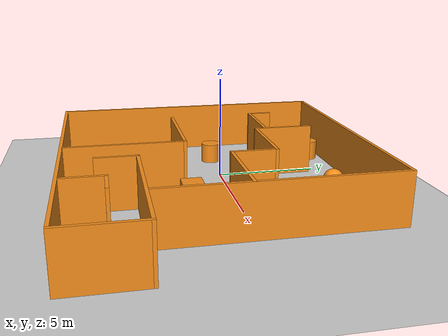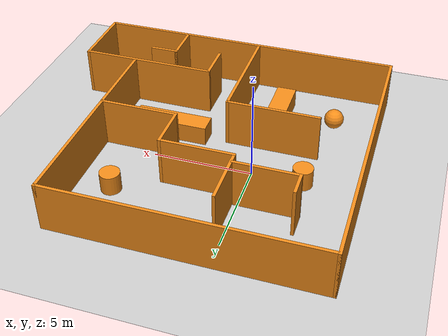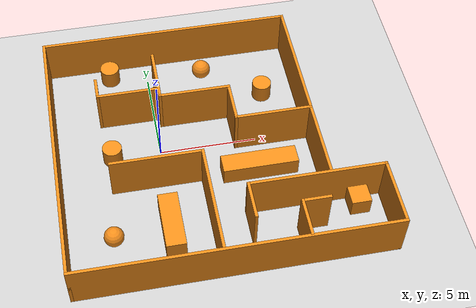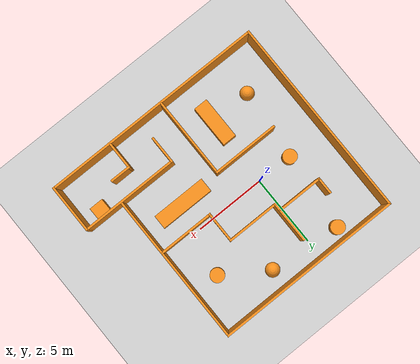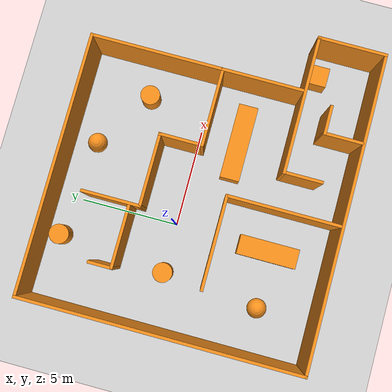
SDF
<sdf version="1.7">
 <world name="default">
  <light name="sun" type="directional">
   <pose>0 0 10 0 -0 0</pose>
   <diffuse>0.8 0.8 0.8 1</diffuse>
   <specular>0.2 0.2 0.2 1</specular>
   <attenuation>
    <range>1000</range>
    <constant>0.9</constant>
    <linear>0.01</linear>
    <quadratic>0.001</quadratic>
   </attenuation>
   <direction>-0.5 0.1 -0.9</direction>
   <spot><inner_angle>0</inner_angle><outer_angle>0</outer_angle><falloff>0</falloff></spot>
  </light>
  <model name="ground_plane">
   <static>1</static>
   <link name="link">
    <collision name="collision">
     <geometry><plane><normal>0 0 1</normal><size>100 100</size></plane></geometry>
     <surface>
      <contact><collide_bitmask>65535</collide_bitmask></contact>
      <friction><ode><mu>100</mu><mu2>50</mu2></ode></friction>
     </surface>
    </collision>
    <visual name="visual">
     <cast_shadows>0</cast_shadows>
     <geometry><plane><normal>0 0 1</normal><size>100 100</size></plane></geometry>
     <material>
      <script><uri>file://media/materials/scripts/gazebo.material</uri><name>Gazebo/Grey</name></script>
     </material>
    </visual>
   </link>
  </model>
  <gravity>0 0 -9.8</gravity>
  <magnetic_field>6e-06 2.3e-05 -4.2e-05</magnetic_field>
  <atmosphere type="adiabatic"/>
  <physics type="ode">
   <max_step_size>0.001</max_step_size>
   <real_time_factor>1</real_time_factor>
   <real_time_update_rate>1000</real_time_update_rate>
  </physics>
  <scene><ambient>0.4 0.4 0.4 1</ambient><background>0.7 0.7 0.7 1</background><shadows>1</shadows></scene>
  <spherical_coordinates>
   <surface_model>EARTH_WGS84</surface_model>
   <latitude_deg>0</latitude_deg>
   <longitude_deg>0</longitude_deg>
   <elevation>0</elevation>
   <heading_deg>0</heading_deg>
  </spherical_coordinates>
  <model name="room_test">
   <pose>2.605 -0.74 0 0 -0 0</pose>
   <link name="Wall_12">
    <collision name="Wall_12_Collision">
     <geometry><box><size>14.25 0.15 2.5</size></box></geometry>
     <pose>0 0 1.25 0 -0 0</pose>
    </collision>
    <visual name="Wall_12_Visual">
     <pose>0 0 1.25 0 -0 0</pose>
     <geometry><box><size>14.25 0.15 2.5</size></box></geometry>
     <material>
      <script><uri>file://media/materials/scripts/gazebo.material</uri><name>Gazebo/Orange</name></script>
      <ambient>1 1 1 1</ambient>
     </material>
     <meta><layer>0</layer></meta>
    </visual>
    <pose>-7.925 -0 0 0 -0 1.5708</pose>
   </link>
   <link name="Wall_14">
    <collision name="Wall_14_Collision">
     <geometry><box><size>3.5 0.15 2.5</size></box></geometry>
     <pose>0 0 1.25 0 -0 0</pose>
    </collision>
    <visual name="Wall_14_Visual">
     <pose>0 0 1.25 0 -0 0</pose>
     <geometry><box><size>3.5 0.15 2.5</size></box></geometry>
     <material>
      <script><uri>file://media/materials/scripts/gazebo.material</uri><name>Gazebo/Orange</name></script>
      <ambient>1 1 1 1</ambient>
     </material>
     <meta><layer>0</layer></meta>
    </visual>
    <pose>7.925 -5.375 0 0 -0 1.5708</pose>
   </link>
   <link name="Wall_15">
    <collision name="Wall_15_Collision">
     <geometry><box><size>7 0.15 2.5</size></box></geometry>
     <pose>0 0 1.25 0 -0 0</pose>
    </collision>
    <visual name="Wall_15_Visual">
     <pose>0 0 1.25 0 -0 0</pose>
     <geometry><box><size>7 0.15 2.5</size></box></geometry>
     <material>
      <script><uri>file://media/materials/scripts/gazebo.material</uri><name>Gazebo/Orange</name></script>
      <ambient>1 1 1 1</ambient>
     </material>
     <meta><layer>0</layer></meta>
    </visual>
    <pose>4.5 -3.7 0 0 -0 3.14159</pose>
   </link>
   <link name="Wall_18">
    <collision name="Wall_18_Collision">
     <geometry><box><size>2 0.15 2.5</size></box></geometry>
     <pose>0 0 1.25 0 -0 0</pose>
    </collision>
    <visual name="Wall_18_Visual">
     <pose>0 0 1.25 0 -0 0</pose>
     <geometry><box><size>2 0.15 2.5</size></box></geometry>
     <material>
      <script><uri>file://media/materials/scripts/gazebo.material</uri><name>Gazebo/Orange</name></script>
      <ambient>1 1 1 1</ambient>
     </material>
     <meta><layer>0</layer></meta>
    </visual>
    <pose>3.405 -6.035 0 0 -0 1.5708</pose>
   </link>
   <link name="Wall_19">
    <collision name="Wall_19_Collision">
     <geometry><box><size>1.5 0.15 2.5</size></box></geometry>
     <pose>0 0 1.25 0 -0 0</pose>
    </collision>
    <visual name="Wall_19_Visual">
     <pose>0 0 1.25 0 -0 0</pose>
     <geometry><box><size>1.5 0.15 2.5</size></box></geometry>
     <material>
      <script><uri>file://media/materials/scripts/gazebo.material</uri><name>Gazebo/Orange</name></script>
      <ambient>1 1 1 1</ambient>
     </material>
     <meta><layer>0</layer></meta>
    </visual>
    <pose>4.08 -5.11 0 0 -0 0</pose>
   </link>
   <link name="Wall_21">
    <collision name="Wall_21_Collision">
     <geometry><box><size>2 0.15 2.5</size></box></geometry>
     <pose>0 0 1.25 0 -0 0</pose>
    </collision>
    <visual name="Wall_21_Visual">
     <pose>0 0 1.25 0 -0 0</pose>
     <geometry><box><size>2 0.15 2.5</size></box></geometry>
     <material>
      <script><uri>file://media/materials/scripts/gazebo.material</uri><name>Gazebo/Orange</name></script>
      <ambient>1 1 1 1</ambient>
     </material>
     <meta><layer>0</layer></meta>
    </visual>
    <pose>1.075 -4.625 0 0 -0 -1.5708</pose>
   </link>
   <link name="Wall_23">
    <collision name="Wall_23_Collision">
     <geometry><box><size>5.75 0.15 2.5</size></box></geometry>
     <pose>0 0 1.25 0 -0 0</pose>
    </collision>
    <visual name="Wall_23_Visual">
     <pose>0 0 1.25 0 -0 0</pose>
     <geometry><box><size>5.75 0.15 2.5</size></box></geometry>
     <material>
      <script><uri>file://media/materials/scripts/gazebo.material</uri><name>Gazebo/Orange</name></script>
      <ambient>1 1 1 1</ambient>
     </material>
     <meta><layer>0</layer></meta>
    </visual>
    <pose>-0.724999 -4.15 0 0 -0 1.5708</pose>
   </link>
   <link name="Wall_25">
    <collision name="Wall_25_Collision">
     <geometry><box><size>4.75 0.15 2.5</size></box></geometry>
     <pose>0 0 1.25 0 -0 0</pose>
    </collision>
    <visual name="Wall_25_Visual">
     <pose>0 0 1.25 0 -0 0</pose>
     <geometry><box><size>4.75 0.15 2.5</size></box></geometry>
     <material>
      <script><uri>file://media/materials/scripts/gazebo.material</uri><name>Gazebo/Orange</name></script>
      <ambient>1 1 1 1</ambient>
     </material>
     <meta><layer>0</layer></meta>
    </visual>
    <pose>-3.025 -1.35 0 0 -0 3.14159</pose>
   </link>
   <link name="Wall_27">
    <collision name="Wall_27_Collision">
     <geometry><box><size>13.25 0.15 2.5</size></box></geometry>
     <pose>0 0 1.25 0 -0 0</pose>
    </collision>
    <visual name="Wall_27_Visual">
     <pose>0 0 1.25 0 -0 0</pose>
     <geometry><box><size>13.25 0.15 2.5</size></box></geometry>
     <material>
      <script><uri>file://media/materials/scripts/gazebo.material</uri><name>Gazebo/Orange</name></script>
      <ambient>1 1 1 1</ambient>
     </material>
     <meta><layer>0</layer></meta>
    </visual>
    <pose>-1.375 7.05 0 0 -0 0</pose>
   </link>
   <link name="Wall_29">
    <collision name="Wall_29_Collision">
     <geometry><box><size>10.75 0.15 2.5</size></box></geometry>
     <pose>0 0 1.25 0 -0 0</pose>
    </collision>
    <visual name="Wall_29_Visual">
     <pose>0 0 1.25 0 -0 0</pose>
     <geometry><box><size>10.75 0.15 2.5</size></box></geometry>
     <material>
      <script><uri>file://media/materials/scripts/gazebo.material</uri><name>Gazebo/Orange</name></script>
      <ambient>1 1 1 1</ambient>
     </material>
     <meta><layer>0</layer></meta>
    </visual>
    <pose>5.175 1.75 0 0 -0 -1.5708</pose>
   </link>
   <link name="Wall_32">
    <collision name="Wall_32_Collision">
     <geometry><box><size>4 0.15 2.5</size></box></geometry>
     <pose>0 0 1.25 0 -0 0</pose>
    </collision>
    <visual name="Wall_32_Visual">
     <pose>0 0 1.25 0 -0 0</pose>
     <geometry><box><size>4 0.15 2.5</size></box></geometry>
     <material>
      <script><uri>file://media/materials/scripts/gazebo.material</uri><name>Gazebo/Orange</name></script>
      <ambient>1 1 1 1</ambient>
     </material>
     <meta><layer>0</layer></meta>
    </visual>
    <pose>3.24 0.43 0 0 -0 3.14159</pose>
   </link>
   <link name="Wall_33">
    <collision name="Wall_33_Collision">
     <geometry><box><size>2.25 0.15 2.5</size></box></geometry>
     <pose>0 0 1.25 0 -0 0</pose>
    </collision>
    <visual name="Wall_33_Visual">
     <pose>0 0 1.25 0 -0 0</pose>
     <geometry><box><size>2.25 0.15 2.5</size></box></geometry>
     <material>
      <script><uri>file://media/materials/scripts/gazebo.material</uri><name>Gazebo/Orange</name></script>
      <ambient>1 1 1 1</ambient>
     </material>
     <meta><layer>0</layer></meta>
    </visual>
    <pose>1.315 1.48 0 0 -0 1.5708</pose>
   </link>
   <link name="Wall_34">
    <collision name="Wall_34_Collision">
     <geometry><box><size>3.75 0.15 2.5</size></box></geometry>
     <pose>0 0 1.25 0 -0 0</pose>
    </collision>
    <visual name="Wall_34_Visual">
     <pose>0 0 1.25 0 -0 0</pose>
     <geometry><box><size>3.75 0.15 2.5</size></box></geometry>
     <material>
      <script><uri>file://media/materials/scripts/gazebo.material</uri><name>Gazebo/Orange</name></script>
      <ambient>1 1 1 1</ambient>
     </material>
     <meta><layer>0</layer></meta>
    </visual>
    <pose>-0.484999 2.53 0 0 -0 3.14159</pose>
   </link>
   <link name="Wall_35">
    <collision name="Wall_35_Collision">
     <geometry><box><size>3 0.15 2.5</size></box></geometry>
     <pose>0 0 1.25 0 -0 0</pose>
    </collision>
    <visual name="Wall_35_Visual">
     <pose>0 0 1.25 0 -0 0</pose>
     <geometry><box><size>3 0.15 2.5</size></box></geometry>
     <material>
      <script><uri>file://media/materials/scripts/gazebo.material</uri><name>Gazebo/Orange</name></script>
      <ambient>1 1 1 1</ambient>
     </material>
     <meta><layer>0</layer></meta>
    </visual>
    <pose>-2.285 3.955 0 0 -0 1.5708</pose>
   </link>
   <link name="Wall_37">
    <collision name="Wall_37_Collision">
     <geometry><box><size>3.25 0.15 2.5</size></box></geometry>
     <pose>0 0 1.25 0 -0 0</pose>
    </collision>
    <visual name="Wall_37_Visual">
     <pose>0 0 1.25 0 -0 0</pose>
     <geometry><box><size>3.25 0.15 2.5</size></box></geometry>
     <material>
      <script><uri>file://media/materials/scripts/gazebo.material</uri><name>Gazebo/Orange</name></script>
      <ambient>1 1 1 1</ambient>
     </material>
     <meta><layer>0</layer></meta>
    </visual>
    <pose>-3.905 3.03 0 0 -0 3.14159</pose>
   </link>
   <link name="Wall_38">
    <collision name="Wall_38_Collision">
     <geometry><box><size>1.25 0.15 2.5</size></box></geometry>
     <pose>0 0 1.25 0 -0 0</pose>
    </collision>
    <visual name="Wall_38_Visual">
     <pose>0 0 1.25 0 -0 0</pose>
     <geometry><box><size>1.25 0.15 2.5</size></box></geometry>
     <material>
      <script><uri>file://media/materials/scripts/gazebo.material</uri><name>Gazebo/Orange</name></script>
      <ambient>1 1 1 1</ambient>
     </material>
     <meta><layer>0</layer></meta>
    </visual>
    <pose>-5.455 3.58 0 0 -0 1.5708</pose>
   </link>
   <link name="Wall_8">
    <collision name="Wall_8_Collision">
     <geometry><box><size>16 0.15 2.5</size></box></geometry>
     <pose>0 0 1.25 0 -0 0</pose>
    </collision>
    <visual name="Wall_8_Visual">
     <pose>0 0 1.25 0 -0 0</pose>
     <geometry><box><size>16 0.15 2.5</size></box></geometry>
     <material>
      <script><uri>file://media/materials/scripts/gazebo.material</uri><name>Gazebo/Orange</name></script>
      <ambient>1 1 1 1</ambient>
     </material>
     <meta><layer>0</layer></meta>
    </visual>
    <pose>1e-06 -7.05 0 0 -0 0</pose>
   </link>
   <static>1</static>
  </model>
  <model name="unit_sphere">
   <pose>-3 -5 0.5 0 -0 0</pose>
   <link name="link">
    <inertial>
     <mass>1</mass>
     <inertia><ixx>0.1</ixx><ixy>0</ixy><ixz>0</ixz><iyy>0.1</iyy><iyz>0</iyz><izz>0.1</izz></inertia>
    </inertial>
    <collision name="collision"><geometry><sphere><radius>0.5</radius></sphere></geometry></collision>
    <visual name="visual">
     <geometry><sphere><radius>0.5</radius></sphere></geometry>
     <material>
      <script><name>Gazebo/Orange</name><uri>file://media/materials/scripts/gazebo.material</uri></script>
     </material>
    </visual>
   </link>
  </model>
  <model name="unit_cylinder">
   <pose>-2 5.5 0.499993 -3e-06 -1e-06 -0</pose>
   <link name="link">
    <inertial>
     <mass>1</mass>
     <inertia><ixx>0.145833</ixx><ixy>0</ixy><ixz>0</ixz><iyy>0.145833</iyy><iyz>0</iyz><izz>0.125</izz></inertia>
    </inertial>
    <collision name="collision">
     <geometry><cylinder><radius>0.5</radius><length>1</length></cylinder></geometry>
    </collision>
    <visual name="visual">
     <geometry><cylinder><radius>0.5</radius><length>1</length></cylinder></geometry>
     <material>
      <script><name>Gazebo/Orange</name><uri>file://media/materials/scripts/gazebo.material</uri></script>
     </material>
    </visual>
   </link>
  </model>
  <model name="unit_cylinder_0">
   <pose>-2.5 -2e-06 0.499998 2e-06 -2e-06 -0</pose>
   <link name="link">
    <inertial>
     <mass>1</mass>
     <inertia><ixx>0.145833</ixx><ixy>0</ixy><ixz>0</ixz><iyy>0.145833</iyy><iyz>0</iyz><izz>0.125</izz></inertia>
    </inertial>
    <collision name="collision">
     <geometry><cylinder><radius>0.5</radius><length>1</length></cylinder></geometry>
    </collision>
    <visual name="visual">
     <geometry><cylinder><radius>0.5</radius><length>1</length></cylinder></geometry>
     <material>
      <script><name>Gazebo/Orange</name><uri>file://media/materials/scripts/gazebo.material</uri></script>
     </material>
    </visual>
   </link>
  </model>
  <model name="unit_box">
   <pose>4.81819 -1.99819 0.499354 -0 -0.000333 -3e-06</pose>
   <link name="link">
    <inertial>
     <mass>1</mass>
     <inertia>
      <ixx>0.166667</ixx>
      <ixy>0</ixy>
      <ixz>0</ixz>
      <iyy>0.166667</iyy>
      <iyz>0</iyz>
      <izz>0.166667</izz>
     </inertia>
    </inertial>
    <collision name="collision"><geometry><box><size>3.88199 1 1</size></box></geometry></collision>
    <visual name="visual">
     <geometry><box><size>3.88199 1 1</size></box></geometry>
     <material>
      <script><name>Gazebo/Orange</name><uri>file://media/materials/scripts/gazebo.material</uri></script>
     </material>
    </visual>
   </link>
  </model>
  <model name="unit_box_0">
   <pose>9.20867 -5.01702 0.499995 -1e-05 -0 0.00337</pose>
   <link name="link">
    <inertial>
     <mass>1</mass>
     <inertia>
      <ixx>0.166667</ixx>
      <ixy>0</ixy>
      <ixz>0</ixz>
      <iyy>0.166667</iyy>
      <iyz>0</iyz>
      <izz>0.166667</izz>
     </inertia>
    </inertial>
    <collision name="collision"><geometry><box><size>1 1 1</size></box></geometry></collision>
    <visual name="visual">
     <geometry><box><size>1 1 1</size></box></geometry>
     <material>
      <script><name>Gazebo/Orange</name><uri>file://media/materials/scripts/gazebo.material</uri></script>
     </material>
    </visual>
   </link>
  </model>
  <model name="unit_sphere_0">
   <pose>3 5 0.5 0 -0 0</pose>
   <link name="link">
    <inertial>
     <mass>1</mass>
     <inertia><ixx>0.1</ixx><ixy>0</ixy><ixz>0</ixz><iyy>0.1</iyy><iyz>0</iyz><izz>0.1</izz></inertia>
    </inertial>
    <collision name="collision"><geometry><sphere><radius>0.5</radius></sphere></geometry></collision>
    <visual name="visual">
     <geometry><sphere><radius>0.5</radius></sphere></geometry>
     <material>
      <script><name>Gazebo/Orange</name><uri>file://media/materials/scripts/gazebo.material</uri></script>
     </material>
    </visual>
   </link>
  </model>
  <model name="unit_cylinder_1">
   <pose>6 3 0.499997 4e-06 1e-06 -0</pose>
   <link name="link">
    <inertial>
     <mass>1</mass>
     <inertia><ixx>0.145833</ixx><ixy>0</ixy><ixz>0</ixz><iyy>0.145833</iyy><iyz>0</iyz><izz>0.125</izz></inertia>
    </inertial>
    <collision name="collision">
     <geometry><cylinder><radius>0.5</radius><length>1</length></cylinder></geometry>
    </collision>
    <visual name="visual">
     <geometry><cylinder><radius>0.5</radius><length>1</length></cylinder></geometry>
     <material>
      <script><name>Gazebo/Orange</name><uri>file://media/materials/scripts/gazebo.material</uri></script>
     </material>
    </visual>
   </link>
  </model>
  <model name="unit_box_1">
   <pose>-0.128631 -4.79851 0.499996 -1e-06 -5e-06 -0</pose>
   <link name="link">
    <inertial>
     <mass>1</mass>
     <inertia>
      <ixx>0.166667</ixx>
      <ixy>0</ixy>
      <ixz>0</ixz>
      <iyy>0.166667</iyy>
      <iyz>0</iyz>
      <izz>0.166667</izz>
     </inertia>
    </inertial>
    <collision name="collision"><geometry><box><size>1 3.02594 1</size></box></geometry></collision>
    <visual name="visual">
     <geometry><box><size>1 3.02594 1</size></box></geometry>
     <material>
      <script><name>Gazebo/Orange</name><uri>file://media/materials/scripts/gazebo.material</uri></script>
     </material>
    </visual>
   </link>
  </model>
 </world>
</sdf>
